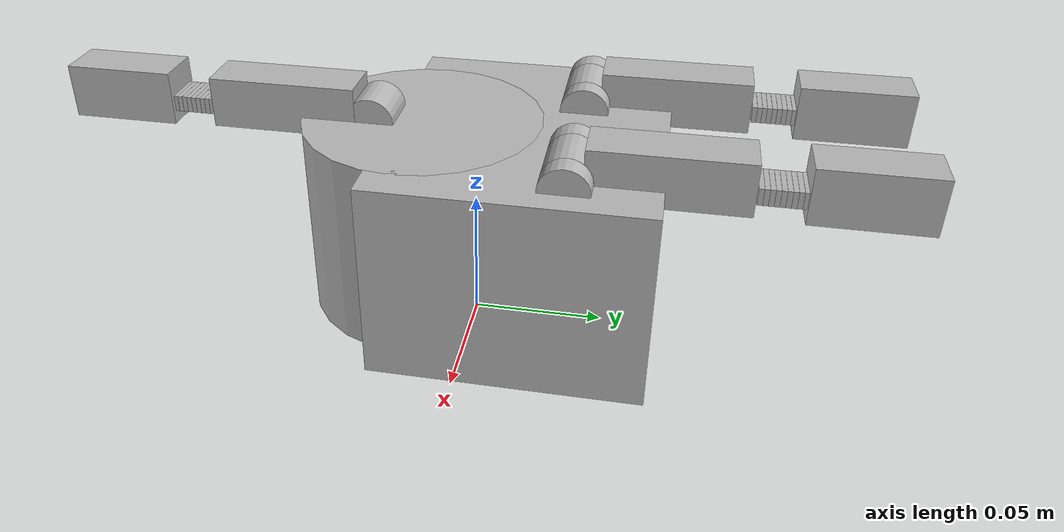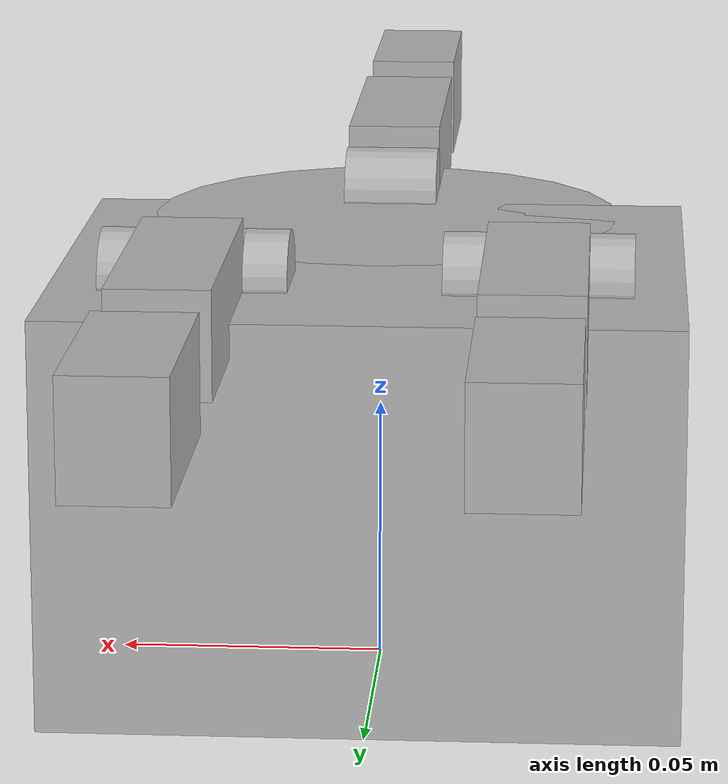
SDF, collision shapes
<sdf version="1.3">
 <model name="irobot_hand">
  <static>false</static>
  <link name="base_link">
   <inertial>
    <mass>0.1</mass>
    <inertia>
     <ixx>0.001000</ixx>
     <ixy>0</ixy>
     <ixz>0</ixz>
     <iyy>0.001000</iyy>
     <iyz>0</iyz>
     <izz>0.001000</izz>
    </inertia>
   </inertial>
   <collision name="collision1">
    <pose>0 0.02 0.045 0 0 0</pose>
    <geometry><box><size>0.114 0.1 0.075</size></box></geometry>
   </collision>
   <collision name="collision2">
    <pose>0 -0.02 0.045 0 0 0</pose>
    <geometry><cylinder><radius>0.0448</radius><length>0.075</length></cylinder></geometry>
   </collision>
   <visual name="base_link_vis">
    <pose>0 -0.038000 -0.023000 0 0 0</pose>
    <geometry><mesh><uri>model://../model_source/models/irobot_hand/meshes/palm.stl</uri></mesh></geometry>
   </visual>
  </link>
  <link name="finger0/base_rotation_link">
   <pose>0.030750 0.038000 0.069477 0 0 0</pose>
   <inertial>
    <mass>0.1</mass>
    <inertia>
     <ixx>0.001000</ixx>
     <ixy>0</ixy>
     <ixz>0</ixz>
     <iyy>0.001000</iyy>
     <iyz>0</iyz>
     <izz>0.001000</izz>
    </inertia>
   </inertial>
   <collision name="collision_1">
    <pose>0 0 -.0025 0 0 0</pose>
    <geometry><cylinder><length>0.0145</length><radius>0.025</radius></cylinder></geometry>
   </collision>
   <collision name="collision_2">
    <pose>0 0 -.0104 0 0 0</pose>
    <geometry><cylinder><length>0.0145</length><radius>0.0165</radius></cylinder></geometry>
   </collision>
   <collision name="collision_3">
    <pose>0 0 .0135 1.5707 0 1.5707</pose>
    <geometry><cylinder><length>0.02</length><radius>0.002</radius></cylinder></geometry>
   </collision>
   <collision name="collision_4">
    <pose>0.013 0 .0135 1.5707 0 1.5707</pose>
    <geometry><cylinder><length>0.008</length><radius>0.009</radius></cylinder></geometry>
   </collision>
   <collision name="collision_5">
    <pose>-0.013 0 .0135 1.5707 0 1.5707</pose>
    <geometry><cylinder><length>0.008</length><radius>0.009</radius></cylinder></geometry>
   </collision>
   <visual name="finger0/base_rotation_link_vis">
    <pose>0 0 0 1.57 0 0</pose>
    <geometry><mesh><uri>model://../model_source/models/irobot_hand/meshes/finger_base.stl</uri></mesh></geometry>
   </visual>
  </link>
  <link name="finger0/proximal_link">
   <pose>0.030750 0.038000 0.082977 1.57 0 -3.140000</pose>
   <inertial>
    <mass>0.1</mass>
    <inertia>
     <ixx>0.001000</ixx>
     <ixy>0</ixy>
     <ixz>0</ixz>
     <iyy>0.001000</iyy>
     <iyz>0</iyz>
     <izz>0.001000</izz>
    </inertia>
   </inertial>
   <collision name="collision1">
    <pose>0 0.0028 0.033 0 0 0</pose>
    <geometry><box><size>0.018 0.019 0.055</size></box></geometry>
   </collision>
   <collision name="collision2">
    <pose>0 0 0 0 1.5707 0</pose>
    <geometry><cylinder><radius>0.009</radius><length>0.018</length></cylinder></geometry>
   </collision>
   <visual name="visual">
    <pose>0 0 0 1.57 -1.57 0</pose>
    <geometry>
     <mesh><uri>model://../model_source/models/irobot_hand/meshes/finger_proximal.stl</uri></mesh>
    </geometry>
   </visual>
  </link>
  <link name="finger0/flexible_link_hidden_between_proximal_link_and_1">
   <pose>0.030651 0.1 0.083026 1.57 0 -3.140000</pose>
   <inertial>
    <mass>0.1</mass>
    <inertia>
     <ixx>0.001000</ixx>
     <ixy>0</ixy>
     <ixz>0</ixz>
     <iyy>0.001000</iyy>
     <iyz>0</iyz>
     <izz>0.001000</izz>
    </inertia>
   </inertial>
  </link>
  <link name="finger0/flexible_link_1">
   <pose>0.030651 0.1 0.083026 1.57 0 -3.140000</pose>
   <inertial>
    <mass>0.1</mass>
    <inertia>
     <ixx>0.001000</ixx>
     <ixy>0</ixy>
     <ixz>0</ixz>
     <iyy>0.001000</iyy>
     <iyz>0</iyz>
     <izz>0.001000</izz>
    </inertia>
   </inertial>
   <collision name="collision">
    <pose>0 0 0 1.57 0 0</pose>
    <geometry><box><size>0.014000 0.001760 0.006000</size></box></geometry>
   </collision>
   <visual name="visual">
    <pose>0 0 0 1.57 0 0</pose>
    <geometry><box><size>0.014000 0.001760 0.006000</size></box></geometry>
   </visual>
  </link>
  <link name="finger0/flexible_link_hidden_between_1_and_2">
   <pose>0.030648 0.101778 0.083028 1.57 0 -3.140000</pose>
   <inertial>
    <mass>0.1</mass>
    <inertia>
     <ixx>0.001000</ixx>
     <ixy>0</ixy>
     <ixz>0</ixz>
     <iyy>0.001000</iyy>
     <iyz>0</iyz>
     <izz>0.001000</izz>
    </inertia>
   </inertial>
  </link>
  <link name="finger0/flexible_link_2">
   <pose>0.030648 0.101778 0.083028 1.57 0 -3.140000</pose>
   <inertial>
    <mass>0.1</mass>
    <inertia>
     <ixx>0.001000</ixx>
     <ixy>0</ixy>
     <ixz>0</ixz>
     <iyy>0.001000</iyy>
     <iyz>0</iyz>
     <izz>0.001000</izz>
    </inertia>
   </inertial>
   <collision name="collision">
    <pose>0 0 0 1.57 0 0</pose>
    <geometry><box><size>0.014000 0.001760 0.006000</size></box></geometry>
   </collision>
   <visual name="visual">
    <pose>0 0 0 1.57 0 0</pose>
    <geometry><box><size>0.014000 0.001760 0.006000</size></box></geometry>
   </visual>
  </link>
  <link name="finger0/flexible_link_hidden_between_2_and_3">
   <pose>0.030646 0.103555 0.083029 1.57 0 -3.140000</pose>
   <inertial>
    <mass>0.1</mass>
    <inertia>
     <ixx>0.001000</ixx>
     <ixy>0</ixy>
     <ixz>0</ixz>
     <iyy>0.001000</iyy>
     <iyz>0</iyz>
     <izz>0.001000</izz>
    </inertia>
   </inertial>
  </link>
  <link name="finger0/flexible_link_3">
   <pose>0.030646 0.103555 0.083029 1.57 0 -3.140000</pose>
   <inertial>
    <mass>0.1</mass>
    <inertia>
     <ixx>0.001000</ixx>
     <ixy>0</ixy>
     <ixz>0</ixz>
     <iyy>0.001000</iyy>
     <iyz>0</iyz>
     <izz>0.001000</izz>
    </inertia>
   </inertial>
   <collision name="collision">
    <pose>0 0 0 1.57 0 0</pose>
    <geometry><box><size>0.014000 0.001760 0.006000</size></box></geometry>
   </collision>
   <visual name="visual">
    <pose>0 0 0 1.57 0 0</pose>
    <geometry><box><size>0.014000 0.001760 0.006000</size></box></geometry>
   </visual>
  </link>
  <link name="finger0/flexible_link_hidden_between_3_and_4">
   <pose>0.030643 0.105333 0.083031 1.57 0 -3.140000</pose>
   <inertial>
    <mass>0.1</mass>
    <inertia>
     <ixx>0.001000</ixx>
     <ixy>0</ixy>
     <ixz>0</ixz>
     <iyy>0.001000</iyy>
     <iyz>0</iyz>
     <izz>0.001000</izz>
    </inertia>
   </inertial>
  </link>
  <link name="finger0/flexible_link_4">
   <pose>0.030643 0.105333 0.083031 1.57 0 -3.140000</pose>
   <inertial>
    <mass>0.1</mass>
    <inertia>
     <ixx>0.001000</ixx>
     <ixy>0</ixy>
     <ixz>0</ixz>
     <iyy>0.001000</iyy>
     <iyz>0</iyz>
     <izz>0.001000</izz>
    </inertia>
   </inertial>
   <collision name="collision">
    <pose>0 0 0 1.57 0 0</pose>
    <geometry><box><size>0.014000 0.001760 0.006000</size></box></geometry>
   </collision>
   <visual name="visual">
    <pose>0 0 0 1.57 0 0</pose>
    <geometry><box><size>0.014000 0.001760 0.006000</size></box></geometry>
   </visual>
  </link>
  <link name="finger0/flexible_link_hidden_between_4_and_5">
   <pose>0.030640 0.107111 0.083032 1.57 0 -3.140000</pose>
   <inertial>
    <mass>0.1</mass>
    <inertia>
     <ixx>0.001000</ixx>
     <ixy>0</ixy>
     <ixz>0</ixz>
     <iyy>0.001000</iyy>
     <iyz>0</iyz>
     <izz>0.001000</izz>
    </inertia>
   </inertial>
  </link>
  <link name="finger0/flexible_link_5">
   <pose>0.030640 0.107111 0.083032 1.57 0 -3.140000</pose>
   <inertial>
    <mass>0.1</mass>
    <inertia>
     <ixx>0.001000</ixx>
     <ixy>0</ixy>
     <ixz>0</ixz>
     <iyy>0.001000</iyy>
     <iyz>0</iyz>
     <izz>0.001000</izz>
    </inertia>
   </inertial>
   <collision name="collision">
    <pose>0 0 0 1.57 0 0</pose>
    <geometry><box><size>0.014000 0.001760 0.006000</size></box></geometry>
   </collision>
   <visual name="visual">
    <pose>0 0 0 1.57 0 0</pose>
    <geometry><box><size>0.014000 0.001760 0.006000</size></box></geometry>
   </visual>
  </link>
  <link name="finger0/flexible_link_hidden_between_5_and_6">
   <pose>0.030637 0.108889 0.083033 1.57 0 -3.140000</pose>
   <inertial>
    <mass>0.1</mass>
    <inertia>
     <ixx>0.001000</ixx>
     <ixy>0</ixy>
     <ixz>0</ixz>
     <iyy>0.001000</iyy>
     <iyz>0</iyz>
     <izz>0.001000</izz>
    </inertia>
   </inertial>
  </link>
  <link name="finger0/flexible_link_6">
   <pose>0.030637 0.108889 0.083033 1.57 0 -3.140000</pose>
   <inertial>
    <mass>0.1</mass>
    <inertia>
     <ixx>0.001000</ixx>
     <ixy>0</ixy>
     <ixz>0</ixz>
     <iyy>0.001000</iyy>
     <iyz>0</iyz>
     <izz>0.001000</izz>
    </inertia>
   </inertial>
   <collision name="collision">
    <pose>0 0 0 1.57 0 0</pose>
    <geometry><box><size>0.014000 0.001760 0.006000</size></box></geometry>
   </collision>
   <visual name="visual">
    <pose>0 0 0 1.57 0 0</pose>
    <geometry><box><size>0.014000 0.001760 0.006000</size></box></geometry>
   </visual>
  </link>
  <link name="finger0/flexible_link_hidden_between_6_and_7">
   <pose>0.030634 0.110667 0.083035 1.57 0 -3.140000</pose>
   <inertial>
    <mass>0.1</mass>
    <inertia>
     <ixx>0.001000</ixx>
     <ixy>0</ixy>
     <ixz>0</ixz>
     <iyy>0.001000</iyy>
     <iyz>0</iyz>
     <izz>0.001000</izz>
    </inertia>
   </inertial>
  </link>
  <link name="finger0/flexible_link_7">
   <pose>0.030634 0.110667 0.083035 1.57 0 -3.140000</pose>
   <inertial>
    <mass>0.1</mass>
    <inertia>
     <ixx>0.001000</ixx>
     <ixy>0</ixy>
     <ixz>0</ixz>
     <iyy>0.001000</iyy>
     <iyz>0</iyz>
     <izz>0.001000</izz>
    </inertia>
   </inertial>
   <collision name="collision">
    <pose>0 0 0 1.57 0 0</pose>
    <geometry><box><size>0.014000 0.001760 0.006000</size></box></geometry>
   </collision>
   <visual name="visual">
    <pose>0 0 0 1.57 0 0</pose>
    <geometry><box><size>0.014000 0.001760 0.006000</size></box></geometry>
   </visual>
  </link>
  <link name="finger0/flexible_link_hidden_between_7_and_8">
   <pose>0.030631 0.112444 0.083036 1.57 0 -3.140000</pose>
   <inertial>
    <mass>0.1</mass>
    <inertia>
     <ixx>0.001000</ixx>
     <ixy>0</ixy>
     <ixz>0</ixz>
     <iyy>0.001000</iyy>
     <iyz>0</iyz>
     <izz>0.001000</izz>
    </inertia>
   </inertial>
  </link>
  <link name="finger0/flexible_link_8">
   <pose>0.030631 0.112444 0.083036 1.57 0 -3.140000</pose>
   <inertial>
    <mass>0.1</mass>
    <inertia>
     <ixx>0.001000</ixx>
     <ixy>0</ixy>
     <ixz>0</ixz>
     <iyy>0.001000</iyy>
     <iyz>0</iyz>
     <izz>0.001000</izz>
    </inertia>
   </inertial>
   <collision name="collision">
    <pose>0 0 0 1.57 0 0</pose>
    <geometry><box><size>0.014000 0.001760 0.006000</size></box></geometry>
   </collision>
   <visual name="visual">
    <pose>0 0 0 1.57 0 0</pose>
    <geometry><box><size>0.014000 0.001760 0.006000</size></box></geometry>
   </visual>
  </link>
  <link name="finger0/flexible_link_hidden_between_8_and_9">
   <pose>0.030629 0.114222 0.083038 1.57 0 -3.140000</pose>
   <inertial>
    <mass>0.1</mass>
    <inertia>
     <ixx>0.001000</ixx>
     <ixy>0</ixy>
     <ixz>0</ixz>
     <iyy>0.001000</iyy>
     <iyz>0</iyz>
     <izz>0.001000</izz>
    </inertia>
   </inertial>
  </link>
  <link name="finger0/flexible_link_9">
   <pose>0.030629 0.114222 0.083038 1.57 0 -3.140000</pose>
   <inertial>
    <mass>0.1</mass>
    <inertia>
     <ixx>0.001000</ixx>
     <ixy>0</ixy>
     <ixz>0</ixz>
     <iyy>0.001000</iyy>
     <iyz>0</iyz>
     <izz>0.001000</izz>
    </inertia>
   </inertial>
   <collision name="collision">
    <pose>0 0 0 1.57 0 0</pose>
    <geometry><box><size>0.014000 0.001760 0.006000</size></box></geometry>
   </collision>
   <visual name="visual">
    <pose>0 0 0 1.57 0 0</pose>
    <geometry><box><size>0.014000 0.001760 0.006000</size></box></geometry>
   </visual>
  </link>
  <link name="finger0/flexible_link_hidden_between_9_and_distal_link">
   <pose>0.030626 0.116000 0.083039 1.57 0 -3.140000</pose>
   <inertial>
    <mass>0.1</mass>
    <inertia>
     <ixx>0.001000</ixx>
     <ixy>0</ixy>
     <ixz>0</ixz>
     <iyy>0.001000</iyy>
     <iyz>0</iyz>
     <izz>0.001000</izz>
    </inertia>
   </inertial>
  </link>
  <link name="finger0/distal_link">
   <pose>0.030626 0.116000 0.083039 1.57 0 -3.140000</pose>
   <inertial>
    <mass>0.1</mass>
    <inertia>
     <ixx>0.001000</ixx>
     <ixy>0</ixy>
     <ixz>0</ixz>
     <iyy>0.001000</iyy>
     <iyz>0</iyz>
     <izz>0.001000</izz>
    </inertia>
   </inertial>
   <collision name="collision">
    <pose>0 0.0025 0.019 3.141590 0.001593 3.141590</pose>
    <geometry><box><size>0.0175 0.02023 0.04043</size></box></geometry>
   </collision>
   <visual name="visual">
    <pose>0 0 0 3.141590 0.001593 3.141590</pose>
    <geometry>
     <mesh><uri>model://../model_source/models/irobot_hand/meshes/finger_distal.stl</uri></mesh>
    </geometry>
   </visual>
  </link>
  <link name="finger1/base_rotation_link">
   <pose>-0.030750 0.038000 0.069477 0 0 0</pose>
   <inertial>
    <mass>0.1</mass>
    <inertia>
     <ixx>0.001000</ixx>
     <ixy>0</ixy>
     <ixz>0</ixz>
     <iyy>0.001000</iyy>
     <iyz>0</iyz>
     <izz>0.001000</izz>
    </inertia>
   </inertial>
   <collision name="collision_1">
    <pose>0 0 -.0025 0 0 0</pose>
    <geometry><cylinder><length>0.0145</length><radius>0.025</radius></cylinder></geometry>
   </collision>
   <collision name="collision_2">
    <pose>0 0 -.0104 0 0 0</pose>
    <geometry><cylinder><length>0.0145</length><radius>0.0165</radius></cylinder></geometry>
   </collision>
   <collision name="collision_3">
    <pose>0 0 .0135 1.5707 0 1.5707</pose>
    <geometry><cylinder><length>0.02</length><radius>0.002</radius></cylinder></geometry>
   </collision>
   <collision name="collision_4">
    <pose>0.013 0 .0135 1.5707 0 1.5707</pose>
    <geometry><cylinder><length>0.008</length><radius>0.009</radius></cylinder></geometry>
   </collision>
   <collision name="collision_5">
    <pose>-0.013 0 .0135 1.5707 0 1.5707</pose>
    <geometry><cylinder><length>0.008</length><radius>0.009</radius></cylinder></geometry>
   </collision>
   <visual name="visual">
    <pose>0 0 0 1.57 0 0</pose>
    <geometry><mesh><uri>model://../model_source/models/irobot_hand/meshes/finger_base.stl</uri></mesh></geometry>
   </visual>
  </link>
  <link name="finger1/proximal_link">
   <pose>-0.030750 0.038000 0.082977 1.57 0 -3.140000</pose>
   <inertial>
    <mass>0.1</mass>
    <inertia>
     <ixx>0.001000</ixx>
     <ixy>0</ixy>
     <ixz>0</ixz>
     <iyy>0.001000</iyy>
     <iyz>0</iyz>
     <izz>0.001000</izz>
    </inertia>
   </inertial>
   <collision name="collision1">
    <pose>0 0.0028 0.033 0 0 0</pose>
    <geometry><box><size>0.018 0.019 0.055</size></box></geometry>
   </collision>
   <collision name="collision2">
    <pose>0 0 0 0 1.5707 0</pose>
    <geometry><cylinder><radius>0.009</radius><length>0.018</length></cylinder></geometry>
   </collision>
   <visual name="visual">
    <pose>0 0 0 1.57 -1.57 -0</pose>
    <geometry>
     <mesh><uri>model://../model_source/models/irobot_hand/meshes/finger_proximal.stl</uri></mesh>
    </geometry>
   </visual>
  </link>
  <link name="finger1/flexible_link_hidden_between_proximal_link_and_1">
   <pose>-0.030849 0.1 0.083026 1.57 0 -3.140000</pose>
   <inertial>
    <mass>0.1</mass>
    <inertia>
     <ixx>0.001000</ixx>
     <ixy>0</ixy>
     <ixz>0</ixz>
     <iyy>0.001000</iyy>
     <iyz>0</iyz>
     <izz>0.001000</izz>
    </inertia>
   </inertial>
  </link>
  <link name="finger1/flexible_link_1">
   <pose>-0.030849 0.1 0.083026 1.57 0 -3.140000</pose>
   <inertial>
    <mass>0.1</mass>
    <inertia>
     <ixx>0.001000</ixx>
     <ixy>0</ixy>
     <ixz>0</ixz>
     <iyy>0.001000</iyy>
     <iyz>0</iyz>
     <izz>0.001000</izz>
    </inertia>
   </inertial>
   <collision name="collision">
    <pose>0 0 0 1.57 0 0</pose>
    <geometry><box><size>0.014000 0.001760 0.006000</size></box></geometry>
   </collision>
   <visual name="visual">
    <pose>0 0 0 1.57 0 0</pose>
    <geometry><box><size>0.014000 0.001760 0.006000</size></box></geometry>
   </visual>
  </link>
  <link name="finger1/flexible_link_hidden_between_1_and_2">
   <pose>-0.030852 0.101778 0.083028 1.57 0 -3.140000</pose>
   <inertial>
    <mass>0.1</mass>
    <inertia>
     <ixx>0.001000</ixx>
     <ixy>0</ixy>
     <ixz>0</ixz>
     <iyy>0.001000</iyy>
     <iyz>0</iyz>
     <izz>0.001000</izz>
    </inertia>
   </inertial>
  </link>
  <link name="finger1/flexible_link_2">
   <pose>-0.030852 0.101778 0.083028 1.57 0 -3.140000</pose>
   <inertial>
    <mass>0.1</mass>
    <inertia>
     <ixx>0.001000</ixx>
     <ixy>0</ixy>
     <ixz>0</ixz>
     <iyy>0.001000</iyy>
     <iyz>0</iyz>
     <izz>0.001000</izz>
    </inertia>
   </inertial>
   <collision name="collision">
    <pose>0 0 0 1.57 0 0</pose>
    <geometry><box><size>0.014000 0.001760 0.006000</size></box></geometry>
   </collision>
   <visual name="visual">
    <pose>0 0 0 1.57 0 0</pose>
    <geometry><box><size>0.014000 0.001760 0.006000</size></box></geometry>
   </visual>
  </link>
  <link name="finger1/flexible_link_hidden_between_2_and_3">
   <pose>-0.030854 0.103555 0.083029 1.57 0 -3.140000</pose>
   <inertial>
    <mass>0.1</mass>
    <inertia>
     <ixx>0.001000</ixx>
     <ixy>0</ixy>
     <ixz>0</ixz>
     <iyy>0.001000</iyy>
     <iyz>0</iyz>
     <izz>0.001000</izz>
    </inertia>
   </inertial>
  </link>
  <link name="finger1/flexible_link_3">
   <pose>-0.030854 0.103555 0.083029 1.57 0 -3.140000</pose>
   <inertial>
    <mass>0.1</mass>
    <inertia>
     <ixx>0.001000</ixx>
     <ixy>0</ixy>
     <ixz>0</ixz>
     <iyy>0.001000</iyy>
     <iyz>0</iyz>
     <izz>0.001000</izz>
    </inertia>
   </inertial>
   <collision name="collision">
    <pose>0 0 0 1.57 0 0</pose>
    <geometry><box><size>0.014000 0.001760 0.006000</size></box></geometry>
   </collision>
   <visual name="visual">
    <pose>0 0 0 1.57 0 0</pose>
    <geometry><box><size>0.014000 0.001760 0.006000</size></box></geometry>
   </visual>
  </link>
  <link name="finger1/flexible_link_hidden_between_3_and_4">
   <pose>-0.030857 0.105333 0.083031 1.57 0 -3.140000</pose>
   <inertial>
    <mass>0.1</mass>
    <inertia>
     <ixx>0.001000</ixx>
     <ixy>0</ixy>
     <ixz>0</ixz>
     <iyy>0.001000</iyy>
     <iyz>0</iyz>
     <izz>0.001000</izz>
    </inertia>
   </inertial>
  </link>
  <link name="finger1/flexible_link_4">
   <pose>-0.030857 0.105333 0.083031 1.57 0 -3.140000</pose>
   <inertial>
    <mass>0.1</mass>
    <inertia>
     <ixx>0.001000</ixx>
     <ixy>0</ixy>
     <ixz>0</ixz>
     <iyy>0.001000</iyy>
     <iyz>0</iyz>
     <izz>0.001000</izz>
    </inertia>
   </inertial>
   <collision name="collision">
    <pose>0 0 0 1.57 0 0</pose>
    <geometry><box><size>0.014000 0.001760 0.006000</size></box></geometry>
   </collision>
   <visual name="visual">
    <pose>0 0 0 1.57 0 0</pose>
    <geometry><box><size>0.014000 0.001760 0.006000</size></box></geometry>
   </visual>
  </link>
  <link name="finger1/flexible_link_hidden_between_4_and_5">
   <pose>-0.030860 0.107111 0.083032 1.57 0 -3.140000</pose>
   <inertial>
    <mass>0.1</mass>
    <inertia>
     <ixx>0.001000</ixx>
     <ixy>0</ixy>
     <ixz>0</ixz>
     <iyy>0.001000</iyy>
     <iyz>0</iyz>
     <izz>0.001000</izz>
    </inertia>
   </inertial>
  </link>
  <link name="finger1/flexible_link_5">
   <pose>-0.030860 0.107111 0.083032 1.57 0 -3.140000</pose>
   <inertial>
    <mass>0.1</mass>
    <inertia>
     <ixx>0.001000</ixx>
     <ixy>0</ixy>
     <ixz>0</ixz>
     <iyy>0.001000</iyy>
     <iyz>0</iyz>
     <izz>0.001000</izz>
    </inertia>
   </inertial>
   <collision name="collision">
    <pose>0 0 0 1.57 0 0</pose>
    <geometry><box><size>0.014000 0.001760 0.006000</size></box></geometry>
   </collision>
   <visual name="visual">
    <pose>0 0 0 1.57 0 0</pose>
    <geometry><box><size>0.014000 0.001760 0.006000</size></box></geometry>
   </visual>
  </link>
  <link name="finger1/flexible_link_hidden_between_5_and_6">
   <pose>-0.030863 0.108889 0.083033 1.57 0 -3.140000</pose>
   <inertial>
    <mass>0.1</mass>
    <inertia>
     <ixx>0.001000</ixx>
     <ixy>0</ixy>
     <ixz>0</ixz>
     <iyy>0.001000</iyy>
     <iyz>0</iyz>
     <izz>0.001000</izz>
    </inertia>
   </inertial>
  </link>
  <link name="finger1/flexible_link_6">
   <pose>-0.030863 0.108889 0.083033 1.57 0 -3.140000</pose>
   <inertial>
    <mass>0.1</mass>
    <inertia>
     <ixx>0.001000</ixx>
     <ixy>0</ixy>
     <ixz>0</ixz>
     <iyy>0.001000</iyy>
     <iyz>0</iyz>
     <izz>0.001000</izz>
    </inertia>
   </inertial>
   <collision name="collision">
    <pose>0 0 0 1.57 0 0</pose>
    <geometry><box><size>0.014000 0.001760 0.006000</size></box></geometry>
   </collision>
   <visual name="visual">
    <pose>0 0 0 1.57 0 0</pose>
    <geometry><box><size>0.014000 0.001760 0.006000</size></box></geometry>
   </visual>
  </link>
  <link name="finger1/flexible_link_hidden_between_6_and_7">
   <pose>-0.030866 0.110667 0.083035 1.57 0 -3.140000</pose>
   <inertial>
    <mass>0.1</mass>
    <inertia>
     <ixx>0.001000</ixx>
     <ixy>0</ixy>
     <ixz>0</ixz>
     <iyy>0.001000</iyy>
     <iyz>0</iyz>
     <izz>0.001000</izz>
    </inertia>
   </inertial>
  </link>
  <link name="finger1/flexible_link_7">
   <pose>-0.030866 0.110667 0.083035 1.57 0 -3.140000</pose>
   <inertial>
    <mass>0.1</mass>
    <inertia>
     <ixx>0.001000</ixx>
     <ixy>0</ixy>
     <ixz>0</ixz>
     <iyy>0.001000</iyy>
     <iyz>0</iyz>
     <izz>0.001000</izz>
    </inertia>
   </inertial>
   <collision name="collision">
    <pose>0 0 0 1.57 0 0</pose>
    <geometry><box><size>0.014000 0.001760 0.006000</size></box></geometry>
   </collision>
   <visual name="visual">
    <pose>0 0 0 1.57 0 0</pose>
    <geometry><box><size>0.014000 0.001760 0.006000</size></box></geometry>
   </visual>
  </link>
  <link name="finger1/flexible_link_hidden_between_7_and_8">
   <pose>-0.030869 0.112444 0.083036 1.57 0 -3.140000</pose>
   <inertial>
    <mass>0.1</mass>
    <inertia>
     <ixx>0.001000</ixx>
     <ixy>0</ixy>
     <ixz>0</ixz>
     <iyy>0.001000</iyy>
     <iyz>0</iyz>
     <izz>0.001000</izz>
    </inertia>
   </inertial>
  </link>
  <link name="finger1/flexible_link_8">
   <pose>-0.030869 0.112444 0.083036 1.57 0 -3.140000</pose>
   <inertial>
    <mass>0.1</mass>
    <inertia>
     <ixx>0.001000</ixx>
     <ixy>0</ixy>
     <ixz>0</ixz>
     <iyy>0.001000</iyy>
     <iyz>0</iyz>
     <izz>0.001000</izz>
    </inertia>
   </inertial>
   <collision name="collision">
    <pose>0 0 0 1.57 0 0</pose>
    <geometry><box><size>0.014000 0.001760 0.006000</size></box></geometry>
   </collision>
   <visual name="visual">
    <pose>0 0 0 1.57 0 0</pose>
    <geometry><box><size>0.014000 0.001760 0.006000</size></box></geometry>
   </visual>
  </link>
  <link name="finger1/flexible_link_hidden_between_8_and_9">
   <pose>-0.030871 0.114222 0.083038 1.57 0 -3.140000</pose>
   <inertial>
    <mass>0.1</mass>
    <inertia>
     <ixx>0.001000</ixx>
     <ixy>0</ixy>
     <ixz>0</ixz>
     <iyy>0.001000</iyy>
     <iyz>0</iyz>
     <izz>0.001000</izz>
    </inertia>
   </inertial>
  </link>
  <link name="finger1/flexible_link_9">
   <pose>-0.030871 0.114222 0.083038 1.57 0 -3.140000</pose>
   <inertial>
    <mass>0.1</mass>
    <inertia>
     <ixx>0.001000</ixx>
     <ixy>0</ixy>
     <ixz>0</ixz>
     <iyy>0.001000</iyy>
     <iyz>0</iyz>
     <izz>0.001000</izz>
    </inertia>
   </inertial>
   <collision name="collision">
    <pose>0 0 0 1.57 0 0</pose>
    <geometry><box><size>0.014000 0.001760 0.006000</size></box></geometry>
   </collision>
   <visual name="visual">
    <pose>0 0 0 1.57 0 0</pose>
    <geometry><box><size>0.014000 0.001760 0.006000</size></box></geometry>
   </visual>
  </link>
  <link name="finger1/flexible_link_hidden_between_9_and_distal_link">
   <pose>-0.030874 0.116000 0.083039 1.57 0 -3.140000</pose>
   <inertial>
    <mass>0.1</mass>
    <inertia>
     <ixx>0.001000</ixx>
     <ixy>0</ixy>
     <ixz>0</ixz>
     <iyy>0.001000</iyy>
     <iyz>0</iyz>
     <izz>0.001000</izz>
    </inertia>
   </inertial>
  </link>
  <link name="finger1/distal_link">
   <pose>-0.030874 0.116000 0.083039 1.57 0 -3.140000</pose>
   <inertial>
    <mass>0.1</mass>
    <inertia>
     <ixx>0.001000</ixx>
     <ixy>0</ixy>
     <ixz>0</ixz>
     <iyy>0.001000</iyy>
     <iyz>0</iyz>
     <izz>0.001000</izz>
    </inertia>
   </inertial>
   <collision name="collision">
    <pose>0 0.0025 0.019 3.141590 0.001593 3.141590</pose>
    <geometry><box><size>0.0175 0.02023 0.04043</size></box></geometry>
   </collision>
   <visual name="visual">
    <pose>0 0 0 3.141590 0.001593 3.141590</pose>
    <geometry>
     <mesh><uri>model://../model_source/models/irobot_hand/meshes/finger_distal.stl</uri></mesh>
    </geometry>
   </visual>
  </link>
  <link name="finger2/proximal_link">
   <pose>0 -0.038000 0.082755 1.57 0 0</pose>
   <inertial>
    <mass>0.1</mass>
    <inertia>
     <ixx>0.001000</ixx>
     <ixy>0</ixy>
     <ixz>0</ixz>
     <iyy>0.001000</iyy>
     <iyz>0</iyz>
     <izz>0.001000</izz>
    </inertia>
   </inertial>
   <collision name="collision1">
    <pose>0 0.0028 0.033 0 0 0</pose>
    <geometry><box><size>0.018 0.019 0.055</size></box></geometry>
   </collision>
   <collision name="collision2">
    <pose>0 0 0 0 1.5707 0</pose>
    <geometry><cylinder><radius>0.009</radius><length>0.018</length></cylinder></geometry>
   </collision>
   <visual name="visual">
    <pose>0 0 0 1.57 -1.57 -0</pose>
    <geometry>
     <mesh><uri>model://../model_source/models/irobot_hand/meshes/finger_proximal.stl</uri></mesh>
    </geometry>
   </visual>
  </link>
  <link name="finger2/flexible_link_hidden_between_proximal_link_and_1">
   <pose>0 -0.1 0.082804 1.57 0 0</pose>
   <inertial>
    <mass>0.1</mass>
    <inertia>
     <ixx>0.001000</ixx>
     <ixy>0</ixy>
     <ixz>0</ixz>
     <iyy>0.001000</iyy>
     <iyz>0</iyz>
     <izz>0.001000</izz>
    </inertia>
   </inertial>
  </link>
  <link name="finger2/flexible_link_1">
   <pose>0 -0.1 0.082804 1.57 0 0</pose>
   <inertial>
    <mass>0.1</mass>
    <inertia>
     <ixx>0.001000</ixx>
     <ixy>0</ixy>
     <ixz>0</ixz>
     <iyy>0.001000</iyy>
     <iyz>0</iyz>
     <izz>0.001000</izz>
    </inertia>
   </inertial>
   <collision name="collision">
    <pose>0 0 0 1.57 0 0</pose>
    <geometry><box><size>0.014000 0.001760 0.006000</size></box></geometry>
   </collision>
   <visual name="visual">
    <pose>0 0 0 1.57 0 0</pose>
    <geometry><box><size>0.014000 0.001760 0.006000</size></box></geometry>
   </visual>
  </link>
  <link name="finger2/flexible_link_hidden_between_1_and_2">
   <pose>0 -0.101778 0.082806 1.57 0 0</pose>
   <inertial>
    <mass>0.1</mass>
    <inertia>
     <ixx>0.001000</ixx>
     <ixy>0</ixy>
     <ixz>0</ixz>
     <iyy>0.001000</iyy>
     <iyz>0</iyz>
     <izz>0.001000</izz>
    </inertia>
   </inertial>
  </link>
  <link name="finger2/flexible_link_2">
   <pose>0 -0.101778 0.082806 1.57 0 0</pose>
   <inertial>
    <mass>0.1</mass>
    <inertia>
     <ixx>0.001000</ixx>
     <ixy>0</ixy>
     <ixz>0</ixz>
     <iyy>0.001000</iyy>
     <iyz>0</iyz>
     <izz>0.001000</izz>
    </inertia>
   </inertial>
   <collision name="collision">
    <pose>0 0 0 1.57 0 0</pose>
    <geometry><box><size>0.014000 0.001760 0.006000</size></box></geometry>
   </collision>
   <visual name="visual">
    <pose>0 0 0 1.57 0 0</pose>
    <geometry><box><size>0.014000 0.001760 0.006000</size></box></geometry>
   </visual>
  </link>
  <link name="finger2/flexible_link_hidden_between_2_and_3">
   <pose>0 -0.103556 0.082807 1.57 0 0</pose>
   <inertial>
    <mass>0.1</mass>
    <inertia>
     <ixx>0.001000</ixx>
     <ixy>0</ixy>
     <ixz>0</ixz>
     <iyy>0.001000</iyy>
     <iyz>0</iyz>
     <izz>0.001000</izz>
    </inertia>
   </inertial>
  </link>
  <link name="finger2/flexible_link_3">
   <pose>0 -0.103556 0.082807 1.57 0 0</pose>
   <inertial>
    <mass>0.1</mass>
    <inertia>
     <ixx>0.001000</ixx>
     <ixy>0</ixy>
     <ixz>0</ixz>
     <iyy>0.001000</iyy>
     <iyz>0</iyz>
     <izz>0.001000</izz>
    </inertia>
   </inertial>
   <collision name="collision">
    <pose>0 0 0 1.57 0 0</pose>
    <geometry><box><size>0.014000 0.001760 0.006000</size></box></geometry>
   </collision>
   <visual name="visual">
    <pose>0 0 0 1.57 0 0</pose>
    <geometry><box><size>0.014000 0.001760 0.006000</size></box></geometry>
   </visual>
  </link>
  <link name="finger2/flexible_link_hidden_between_3_and_4">
   <pose>0 -0.105333 0.082809 1.57 0 0</pose>
   <inertial>
    <mass>0.1</mass>
    <inertia>
     <ixx>0.001000</ixx>
     <ixy>0</ixy>
     <ixz>0</ixz>
     <iyy>0.001000</iyy>
     <iyz>0</iyz>
     <izz>0.001000</izz>
    </inertia>
   </inertial>
  </link>
  <link name="finger2/flexible_link_4">
   <pose>0 -0.105333 0.082809 1.57 0 0</pose>
   <inertial>
    <mass>0.1</mass>
    <inertia>
     <ixx>0.001000</ixx>
     <ixy>0</ixy>
     <ixz>0</ixz>
     <iyy>0.001000</iyy>
     <iyz>0</iyz>
     <izz>0.001000</izz>
    </inertia>
   </inertial>
   <collision name="collision">
    <pose>0 0 0 1.57 0 0</pose>
    <geometry><box><size>0.014000 0.001760 0.006000</size></box></geometry>
   </collision>
   <visual name="visual">
    <pose>0 0 0 1.57 0 0</pose>
    <geometry><box><size>0.014000 0.001760 0.006000</size></box></geometry>
   </visual>
  </link>
  <link name="finger2/flexible_link_hidden_between_4_and_5">
   <pose>0 -0.107111 0.082810 1.57 0 0</pose>
   <inertial>
    <mass>0.1</mass>
    <inertia>
     <ixx>0.001000</ixx>
     <ixy>0</ixy>
     <ixz>0</ixz>
     <iyy>0.001000</iyy>
     <iyz>0</iyz>
     <izz>0.001000</izz>
    </inertia>
   </inertial>
  </link>
  <link name="finger2/flexible_link_5">
   <pose>0 -0.107111 0.082810 1.57 0 0</pose>
   <inertial>
    <mass>0.1</mass>
    <inertia>
     <ixx>0.001000</ixx>
     <ixy>0</ixy>
     <ixz>0</ixz>
     <iyy>0.001000</iyy>
     <iyz>0</iyz>
     <izz>0.001000</izz>
    </inertia>
   </inertial>
   <collision name="collision">
    <pose>0 0 0 1.57 0 0</pose>
    <geometry><box><size>0.014000 0.001760 0.006000</size></box></geometry>
   </collision>
   <visual name="visual">
    <pose>0 0 0 1.57 0 0</pose>
    <geometry><box><size>0.014000 0.001760 0.006000</size></box></geometry>
   </visual>
  </link>
  <link name="finger2/flexible_link_hidden_between_5_and_6">
   <pose>0 -0.108889 0.082811 1.57 0 0</pose>
   <inertial>
    <mass>0.1</mass>
    <inertia>
     <ixx>0.001000</ixx>
     <ixy>0</ixy>
     <ixz>0</ixz>
     <iyy>0.001000</iyy>
     <iyz>0</iyz>
     <izz>0.001000</izz>
    </inertia>
   </inertial>
  </link>
  <link name="finger2/flexible_link_6">
   <pose>0 -0.108889 0.082811 1.57 0 0</pose>
   <inertial>
    <mass>0.1</mass>
    <inertia>
     <ixx>0.001000</ixx>
     <ixy>0</ixy>
     <ixz>0</ixz>
     <iyy>0.001000</iyy>
     <iyz>0</iyz>
     <izz>0.001000</izz>
    </inertia>
   </inertial>
   <collision name="collision">
    <pose>0 0 0 1.57 0 0</pose>
    <geometry><box><size>0.014000 0.001760 0.006000</size></box></geometry>
   </collision>
   <visual name="visual">
    <pose>0 0 0 1.57 0 0</pose>
    <geometry><box><size>0.014000 0.001760 0.006000</size></box></geometry>
   </visual>
  </link>
  <link name="finger2/flexible_link_hidden_between_6_and_7">
   <pose>0 -0.110667 0.082813 1.57 0 0</pose>
   <inertial>
    <mass>0.1</mass>
    <inertia>
     <ixx>0.001000</ixx>
     <ixy>0</ixy>
     <ixz>0</ixz>
     <iyy>0.001000</iyy>
     <iyz>0</iyz>
     <izz>0.001000</izz>
    </inertia>
   </inertial>
  </link>
  <link name="finger2/flexible_link_7">
   <pose>0 -0.110667 0.082813 1.57 0 0</pose>
   <inertial>
    <mass>0.1</mass>
    <inertia>
     <ixx>0.001000</ixx>
     <ixy>0</ixy>
     <ixz>0</ixz>
     <iyy>0.001000</iyy>
     <iyz>0</iyz>
     <izz>0.001000</izz>
    </inertia>
   </inertial>
   <collision name="collision">
    <pose>0 0 0 1.57 0 0</pose>
    <geometry><box><size>0.014000 0.001760 0.006000</size></box></geometry>
   </collision>
   <visual name="visual">
    <pose>0 0 0 1.57 0 0</pose>
    <geometry><box><size>0.014000 0.001760 0.006000</size></box></geometry>
   </visual>
  </link>
  <link name="finger2/flexible_link_hidden_between_7_and_8">
   <pose>0 -0.112444 0.082814 1.57 0 0</pose>
   <inertial>
    <mass>0.1</mass>
    <inertia>
     <ixx>0.001000</ixx>
     <ixy>0</ixy>
     <ixz>0</ixz>
     <iyy>0.001000</iyy>
     <iyz>0</iyz>
     <izz>0.001000</izz>
    </inertia>
   </inertial>
  </link>
  <link name="finger2/flexible_link_8">
   <pose>0 -0.112444 0.082814 1.57 0 0</pose>
   <inertial>
    <mass>0.1</mass>
    <inertia>
     <ixx>0.001000</ixx>
     <ixy>0</ixy>
     <ixz>0</ixz>
     <iyy>0.001000</iyy>
     <iyz>0</iyz>
     <izz>0.001000</izz>
    </inertia>
   </inertial>
   <collision name="collision">
    <pose>0 0 0 1.57 0 0</pose>
    <geometry><box><size>0.014000 0.001760 0.006000</size></box></geometry>
   </collision>
   <visual name="visual">
    <pose>0 0 0 1.57 0 0</pose>
    <geometry><box><size>0.014000 0.001760 0.006000</size></box></geometry>
   </visual>
  </link>
  <link name="finger2/flexible_link_hidden_between_8_and_9">
   <pose>0 -0.114222 0.082816 1.57 0 0</pose>
   <inertial>
    <mass>0.1</mass>
    <inertia>
     <ixx>0.001000</ixx>
     <ixy>0</ixy>
     <ixz>0</ixz>
     <iyy>0.001000</iyy>
     <iyz>0</iyz>
     <izz>0.001000</izz>
    </inertia>
   </inertial>
  </link>
  <link name="finger2/flexible_link_9">
   <pose>0 -0.114222 0.082816 1.57 0 0</pose>
   <inertial>
    <mass>0.1</mass>
    <inertia>
     <ixx>0.001000</ixx>
     <ixy>0</ixy>
     <ixz>0</ixz>
     <iyy>0.001000</iyy>
     <iyz>0</iyz>
     <izz>0.001000</izz>
    </inertia>
   </inertial>
   <collision name="collision">
    <pose>0 0 0 1.57 0 0</pose>
    <geometry><box><size>0.014000 0.001760 0.006000</size></box></geometry>
   </collision>
   <visual name="visual">
    <pose>0 0 0 1.57 0 0</pose>
    <geometry><box><size>0.014000 0.001760 0.006000</size></box></geometry>
   </visual>
  </link>
  <link name="finger2/flexible_link_hidden_between_9_and_distal_link">
   <pose>0 -0.116000 0.082817 1.57 0 0</pose>
   <inertial>
    <mass>0.1</mass>
    <inertia>
     <ixx>0.001000</ixx>
     <ixy>0</ixy>
     <ixz>0</ixz>
     <iyy>0.001000</iyy>
     <iyz>0</iyz>
     <izz>0.001000</izz>
    </inertia>
   </inertial>
  </link>
  <link name="finger2/distal_link">
   <pose>0 -0.116000 0.082817 1.57 0 0</pose>
   <inertial>
    <mass>0.1</mass>
    <inertia>
     <ixx>0.001000</ixx>
     <ixy>0</ixy>
     <ixz>0</ixz>
     <iyy>0.001000</iyy>
     <iyz>0</iyz>
     <izz>0.001000</izz>
    </inertia>
   </inertial>
   <collision name="collision">
    <pose>0 0.0025 0.019 3.141590 0.001593 3.141590</pose>
    <geometry><box><size>0.0175 0.02023 0.04043</size></box></geometry>
   </collision>
   <visual name="visual">
    <pose>0 0 0 3.141590 0.001593 3.141590</pose>
    <geometry>
     <mesh><uri>model://../model_source/models/irobot_hand/meshes/finger_distal.stl</uri></mesh>
    </geometry>
   </visual>
  </link>
  <joint name="finger0/joint_base_rotation" type="revolute">
   <child>finger0/base_rotation_link</child>
   <parent>base_link</parent>
   <axis><xyz>0 0 -1</xyz><limit><lower>0</lower><upper>1.57</upper></limit></axis>
  </joint>
  <joint name="finger0/joint_base" type="revolute">
   <child>finger0/proximal_link</child>
   <parent>finger0/base_rotation_link</parent>
   <axis><xyz>0.999999 0.001593 -0</xyz><limit><lower>0</lower><upper>1.57</upper></limit></axis>
  </joint>
  <joint name="finger0/flexible_joint_flex_from_proximal_to_1" type="revolute">
   <child>finger0/flexible_link_hidden_between_proximal_link_and_1</child>
   <parent>finger0/proximal_link</parent>
   <axis><xyz>0.999999 0.001593 -0</xyz><limit><lower>0</lower><upper>1.57</upper></limit></axis>
  </joint>
  <joint name="finger0/flexible_joint_twist_from_proximal_to_1" type="revolute">
   <child>finger0/flexible_link_1</child>
   <parent>finger0/flexible_link_hidden_between_proximal_link_and_1</parent>
   <axis><xyz>-0.001593 0.999998 0.000796</xyz><limit><lower>0</lower><upper>1.57</upper></limit></axis>
  </joint>
  <joint name="finger0/flexible_joint_flex_from_1_to_2" type="revolute">
   <child>finger0/flexible_link_hidden_between_1_and_2</child>
   <parent>finger0/flexible_link_1</parent>
   <axis><xyz>0.999999 0.001593 -0</xyz><limit><lower>0</lower><upper>1.57</upper></limit></axis>
  </joint>
  <joint name="finger0/flexible_joint_twist_from_1_to_2" type="revolute">
   <child>finger0/flexible_link_2</child>
   <parent>finger0/flexible_link_hidden_between_1_and_2</parent>
   <axis><xyz>-0.001593 0.999998 0.000796</xyz><limit><lower>0</lower><upper>1.57</upper></limit></axis>
  </joint>
  <joint name="finger0/flexible_joint_flex_from_2_to_3" type="revolute">
   <child>finger0/flexible_link_hidden_between_2_and_3</child>
   <parent>finger0/flexible_link_2</parent>
   <axis><xyz>0.999999 0.001593 -0</xyz><limit><lower>0</lower><upper>1.57</upper></limit></axis>
  </joint>
  <joint name="finger0/flexible_joint_twist_from_2_to_3" type="revolute">
   <child>finger0/flexible_link_3</child>
   <parent>finger0/flexible_link_hidden_between_2_and_3</parent>
   <axis><xyz>-0.001593 0.999998 0.000796</xyz><limit><lower>0</lower><upper>1.57</upper></limit></axis>
  </joint>
  <joint name="finger0/flexible_joint_flex_from_3_to_4" type="revolute">
   <child>finger0/flexible_link_hidden_between_3_and_4</child>
   <parent>finger0/flexible_link_3</parent>
   <axis><xyz>0.999999 0.001593 -0</xyz><limit><lower>0</lower><upper>1.57</upper></limit></axis>
  </joint>
  <joint name="finger0/flexible_joint_flex_from_4_to_5" type="revolute">
   <child>finger0/flexible_link_hidden_between_4_and_5</child>
   <parent>finger0/flexible_link_4</parent>
   <axis><xyz>0.999999 0.001593 -0</xyz><limit><lower>0</lower><upper>1.57</upper></limit></axis>
  </joint>
  <joint name="finger0/flexible_joint_twist_from_3_to_4" type="revolute">
   <child>finger0/flexible_link_4</child>
   <parent>finger0/flexible_link_hidden_between_3_and_4</parent>
   <axis><xyz>-0.001593 0.999998 0.000796</xyz><limit><lower>0</lower><upper>1.57</upper></limit></axis>
  </joint>
  <joint name="finger0/flexible_joint_twist_from_4_to_5" type="revolute">
   <child>finger0/flexible_link_5</child>
   <parent>finger0/flexible_link_hidden_between_4_and_5</parent>
   <axis><xyz>-0.001593 0.999998 0.000796</xyz><limit><lower>0</lower><upper>1.57</upper></limit></axis>
  </joint>
  <joint name="finger0/flexible_joint_flex_from_5_to_6" type="revolute">
   <child>finger0/flexible_link_hidden_between_5_and_6</child>
   <parent>finger0/flexible_link_5</parent>
   <axis><xyz>0.999999 0.001593 -0</xyz><limit><lower>0</lower><upper>1.57</upper></limit></axis>
  </joint>
  <joint name="finger0/flexible_joint_twist_from_5_to_6" type="revolute">
   <child>finger0/flexible_link_6</child>
   <parent>finger0/flexible_link_hidden_between_5_and_6</parent>
   <axis><xyz>-0.001593 0.999998 0.000796</xyz><limit><lower>0</lower><upper>1.57</upper></limit></axis>
  </joint>
  <joint name="finger0/flexible_joint_flex_from_6_to_7" type="revolute">
   <child>finger0/flexible_link_hidden_between_6_and_7</child>
   <parent>finger0/flexible_link_6</parent>
   <axis><xyz>0.999999 0.001593 -0</xyz><limit><lower>0</lower><upper>1.57</upper></limit></axis>
  </joint>
  <joint name="finger0/flexible_joint_twist_from_6_to_7" type="revolute">
   <child>finger0/flexible_link_7</child>
   <parent>finger0/flexible_link_hidden_between_6_and_7</parent>
   <axis><xyz>-0.001593 0.999998 0.000796</xyz><limit><lower>0</lower><upper>1.57</upper></limit></axis>
  </joint>
  <joint name="finger0/flexible_joint_flex_from_7_to_8" type="revolute">
   <child>finger0/flexible_link_hidden_between_7_and_8</child>
   <parent>finger0/flexible_link_7</parent>
   <axis><xyz>0.999999 0.001593 -0</xyz><limit><lower>0</lower><upper>1.57</upper></limit></axis>
  </joint>
  <joint name="finger0/flexible_joint_twist_from_7_to_8" type="revolute">
   <child>finger0/flexible_link_8</child>
   <parent>finger0/flexible_link_hidden_between_7_and_8</parent>
   <axis><xyz>-0.001593 0.999998 0.000796</xyz><limit><lower>0</lower><upper>1.57</upper></limit></axis>
  </joint>
  <joint name="finger0/flexible_joint_flex_from_8_to_9" type="revolute">
   <child>finger0/flexible_link_hidden_between_8_and_9</child>
   <parent>finger0/flexible_link_8</parent>
   <axis><xyz>0.999999 0.001593 -0</xyz><limit><lower>0</lower><upper>1.57</upper></limit></axis>
  </joint>
  <joint name="finger0/flexible_joint_flex_from_9_to_distal" type="revolute">
   <child>finger0/flexible_link_hidden_between_9_and_distal_link</child>
   <parent>finger0/flexible_link_9</parent>
   <axis><xyz>0.999999 0.001593 -0</xyz><limit><lower>0</lower><upper>1.57</upper></limit></axis>
  </joint>
  <joint name="finger0/flexible_joint_twist_from_8_to_9" type="revolute">
   <child>finger0/flexible_link_9</child>
   <parent>finger0/flexible_link_hidden_between_8_and_9</parent>
   <axis><xyz>-0.001593 0.999998 0.000796</xyz><limit><lower>0</lower><upper>1.57</upper></limit></axis>
  </joint>
  <joint name="finger0/flexible_joint_twist_from_9_to_distal" type="revolute">
   <child>finger0/distal_link</child>
   <parent>finger0/flexible_link_hidden_between_9_and_distal_link</parent>
   <axis><xyz>-0.001593 0.999998 0.000796</xyz><limit><lower>0</lower><upper>1.57</upper></limit></axis>
  </joint>
  <joint name="finger1/joint_base_rotation" type="revolute">
   <child>finger1/base_rotation_link</child>
   <parent>base_link</parent>
   <axis><xyz>0 0 1</xyz><limit><lower>0</lower><upper>1.57</upper></limit></axis>
  </joint>
  <joint name="finger1/joint_base" type="revolute">
   <child>finger1/proximal_link</child>
   <parent>finger1/base_rotation_link</parent>
   <axis><xyz>0.999999 0.001593 -0</xyz><limit><lower>0</lower><upper>1.57</upper></limit></axis>
  </joint>
  <joint name="finger1/flexible_joint_twist_from_proximal_to_1" type="revolute">
   <child>finger1/flexible_link_1</child>
   <parent>finger1/flexible_link_hidden_between_proximal_link_and_1</parent>
   <axis><xyz>-0.001593 0.999998 0.000796</xyz><limit><lower>0</lower><upper>1.57</upper></limit></axis>
  </joint>
  <joint name="finger1/flexible_joint_flex_from_proximal_to_1" type="revolute">
   <child>finger1/flexible_link_hidden_between_proximal_link_and_1</child>
   <parent>finger1/proximal_link</parent>
   <axis><xyz>0.999999 0.001593 -0</xyz><limit><lower>0</lower><upper>1.57</upper></limit></axis>
  </joint>
  <joint name="finger1/flexible_joint_flex_from_1_to_2" type="revolute">
   <child>finger1/flexible_link_hidden_between_1_and_2</child>
   <parent>finger1/flexible_link_1</parent>
   <axis><xyz>0.999999 0.001593 -0</xyz><limit><lower>0</lower><upper>1.57</upper></limit></axis>
  </joint>
  <joint name="finger1/flexible_joint_twist_from_1_to_2" type="revolute">
   <child>finger1/flexible_link_2</child>
   <parent>finger1/flexible_link_hidden_between_1_and_2</parent>
   <axis><xyz>-0.001593 0.999998 0.000796</xyz><limit><lower>0</lower><upper>1.57</upper></limit></axis>
  </joint>
  <joint name="finger1/flexible_joint_flex_from_2_to_3" type="revolute">
   <child>finger1/flexible_link_hidden_between_2_and_3</child>
   <parent>finger1/flexible_link_2</parent>
   <axis><xyz>0.999999 0.001593 -0</xyz><limit><lower>0</lower><upper>1.57</upper></limit></axis>
  </joint>
  <joint name="finger1/flexible_joint_twist_from_2_to_3" type="revolute">
   <child>finger1/flexible_link_3</child>
   <parent>finger1/flexible_link_hidden_between_2_and_3</parent>
   <axis><xyz>-0.001593 0.999998 0.000796</xyz><limit><lower>0</lower><upper>1.57</upper></limit></axis>
  </joint>
  <joint name="finger1/flexible_joint_flex_from_3_to_4" type="revolute">
   <child>finger1/flexible_link_hidden_between_3_and_4</child>
   <parent>finger1/flexible_link_3</parent>
   <axis><xyz>0.999999 0.001593 -0</xyz><limit><lower>0</lower><upper>1.57</upper></limit></axis>
  </joint>
  <joint name="finger1/flexible_joint_twist_from_3_to_4" type="revolute">
   <child>finger1/flexible_link_4</child>
   <parent>finger1/flexible_link_hidden_between_3_and_4</parent>
   <axis><xyz>-0.001593 0.999998 0.000796</xyz><limit><lower>0</lower><upper>1.57</upper></limit></axis>
  </joint>
  <joint name="finger1/flexible_joint_flex_from_4_to_5" type="revolute">
   <child>finger1/flexible_link_hidden_between_4_and_5</child>
   <parent>finger1/flexible_link_4</parent>
   <axis><xyz>0.999999 0.001593 -0</xyz><limit><lower>0</lower><upper>1.57</upper></limit></axis>
  </joint>
  <joint name="finger1/flexible_joint_twist_from_4_to_5" type="revolute">
   <child>finger1/flexible_link_5</child>
   <parent>finger1/flexible_link_hidden_between_4_and_5</parent>
   <axis><xyz>-0.001593 0.999998 0.000796</xyz><limit><lower>0</lower><upper>1.57</upper></limit></axis>
  </joint>
  <joint name="finger1/flexible_joint_flex_from_5_to_6" type="revolute">
   <child>finger1/flexible_link_hidden_between_5_and_6</child>
   <parent>finger1/flexible_link_5</parent>
   <axis><xyz>0.999999 0.001593 -0</xyz><limit><lower>0</lower><upper>1.57</upper></limit></axis>
  </joint>
  <joint name="finger1/flexible_joint_twist_from_5_to_6" type="revolute">
   <child>finger1/flexible_link_6</child>
   <parent>finger1/flexible_link_hidden_between_5_and_6</parent>
   <axis><xyz>-0.001593 0.999998 0.000796</xyz><limit><lower>0</lower><upper>1.57</upper></limit></axis>
  </joint>
  <joint name="finger1/flexible_joint_flex_from_6_to_7" type="revolute">
   <child>finger1/flexible_link_hidden_between_6_and_7</child>
   <parent>finger1/flexible_link_6</parent>
   <axis><xyz>0.999999 0.001593 -0</xyz><limit><lower>0</lower><upper>1.57</upper></limit></axis>
  </joint>
  <joint name="finger1/flexible_joint_twist_from_6_to_7" type="revolute">
   <child>finger1/flexible_link_7</child>
   <parent>finger1/flexible_link_hidden_between_6_and_7</parent>
   <axis><xyz>-0.001593 0.999998 0.000796</xyz><limit><lower>0</lower><upper>1.57</upper></limit></axis>
  </joint>
  <joint name="finger1/flexible_joint_flex_from_7_to_8" type="revolute">
   <child>finger1/flexible_link_hidden_between_7_and_8</child>
   <parent>finger1/flexible_link_7</parent>
   <axis><xyz>0.999999 0.001593 -0</xyz><limit><lower>0</lower><upper>1.57</upper></limit></axis>
  </joint>
  <joint name="finger1/flexible_joint_twist_from_7_to_8" type="revolute">
   <child>finger1/flexible_link_8</child>
   <parent>finger1/flexible_link_hidden_between_7_and_8</parent>
   <axis><xyz>-0.001593 0.999998 0.000796</xyz><limit><lower>0</lower><upper>1.57</upper></limit></axis>
  </joint>
  <joint name="finger1/flexible_joint_flex_from_8_to_9" type="revolute">
   <child>finger1/flexible_link_hidden_between_8_and_9</child>
   <parent>finger1/flexible_link_8</parent>
   <axis><xyz>0.999999 0.001593 -0</xyz><limit><lower>0</lower><upper>1.57</upper></limit></axis>
  </joint>
  <joint name="finger1/flexible_joint_twist_from_8_to_9" type="revolute">
   <child>finger1/flexible_link_9</child>
   <parent>finger1/flexible_link_hidden_between_8_and_9</parent>
   <axis><xyz>-0.001593 0.999998 0.000796</xyz><limit><lower>0</lower><upper>1.57</upper></limit></axis>
  </joint>
  <joint name="finger1/flexible_joint_flex_from_9_to_distal" type="revolute">
   <child>finger1/flexible_link_hidden_between_9_and_distal_link</child>
   <parent>finger1/flexible_link_9</parent>
   <axis><xyz>0.999999 0.001593 -0</xyz><limit><lower>0</lower><upper>1.57</upper></limit></axis>
  </joint>
  <joint name="finger1/flexible_joint_twist_from_9_to_distal" type="revolute">
   <child>finger1/distal_link</child>
   <parent>finger1/flexible_link_hidden_between_9_and_distal_link</parent>
   <axis><xyz>-0.001593 0.999998 0.000796</xyz><limit><lower>0</lower><upper>1.57</upper></limit></axis>
  </joint>
  <joint name="finger2/joint_base" type="revolute">
   <child>finger2/proximal_link</child>
   <parent>base_link</parent>
   <axis><xyz>-1 0 0</xyz><limit><lower>0</lower><upper>1.57</upper></limit></axis>
  </joint>
  <joint name="finger2/flexible_joint_flex_from_proximal_to_1" type="revolute">
   <child>finger2/flexible_link_hidden_between_proximal_link_and_1</child>
   <parent>finger2/proximal_link</parent>
   <axis><xyz>-1 0 0</xyz><limit><lower>0</lower><upper>1.57</upper></limit></axis>
  </joint>
  <joint name="finger2/flexible_joint_twist_from_proximal_to_1" type="revolute">
   <child>finger2/flexible_link_1</child>
   <parent>finger2/flexible_link_hidden_between_proximal_link_and_1</parent>
   <axis><xyz>0 -1 0.000796</xyz><limit><lower>0</lower><upper>1.57</upper></limit></axis>
  </joint>
  <joint name="finger2/flexible_joint_flex_from_1_to_2" type="revolute">
   <child>finger2/flexible_link_hidden_between_1_and_2</child>
   <parent>finger2/flexible_link_1</parent>
   <axis><xyz>-1 0 0</xyz><limit><lower>0</lower><upper>1.57</upper></limit></axis>
  </joint>
  <joint name="finger2/flexible_joint_twist_from_1_to_2" type="revolute">
   <child>finger2/flexible_link_2</child>
   <parent>finger2/flexible_link_hidden_between_1_and_2</parent>
   <axis><xyz>0 -1 0.000796</xyz><limit><lower>0</lower><upper>1.57</upper></limit></axis>
  </joint>
  <joint name="finger2/flexible_joint_flex_from_2_to_3" type="revolute">
   <child>finger2/flexible_link_hidden_between_2_and_3</child>
   <parent>finger2/flexible_link_2</parent>
   <axis><xyz>-1 0 0</xyz><limit><lower>0</lower><upper>1.57</upper></limit></axis>
  </joint>
  <joint name="finger2/flexible_joint_twist_from_2_to_3" type="revolute">
   <child>finger2/flexible_link_3</child>
   <parent>finger2/flexible_link_hidden_between_2_and_3</parent>
   <axis><xyz>0 -1 0.000796</xyz><limit><lower>0</lower><upper>1.57</upper></limit></axis>
  </joint>
  <joint name="finger2/flexible_joint_flex_from_3_to_4" type="revolute">
   <child>finger2/flexible_link_hidden_between_3_and_4</child>
   <parent>finger2/flexible_link_3</parent>
   <axis><xyz>-1 0 0</xyz><limit><lower>0</lower><upper>1.57</upper></limit></axis>
  </joint>
  <joint name="finger2/flexible_joint_twist_from_3_to_4" type="revolute">
   <child>finger2/flexible_link_4</child>
   <parent>finger2/flexible_link_hidden_between_3_and_4</parent>
   <axis><xyz>0 -1 0.000796</xyz><limit><lower>0</lower><upper>1.57</upper></limit></axis>
  </joint>
  <joint name="finger2/flexible_joint_flex_from_4_to_5" type="revolute">
   <child>finger2/flexible_link_hidden_between_4_and_5</child>
   <parent>finger2/flexible_link_4</parent>
   <axis><xyz>-1 0 0</xyz><limit><lower>0</lower><upper>1.57</upper></limit></axis>
  </joint>
  <joint name="finger2/flexible_joint_twist_from_4_to_5" type="revolute">
   <child>finger2/flexible_link_5</child>
   <parent>finger2/flexible_link_hidden_between_4_and_5</parent>
   <axis><xyz>0 -1 0.000796</xyz><limit><lower>0</lower><upper>1.57</upper></limit></axis>
  </joint>
  <joint name="finger2/flexible_joint_flex_from_5_to_6" type="revolute">
   <child>finger2/flexible_link_hidden_between_5_and_6</child>
   <parent>finger2/flexible_link_5</parent>
   <axis><xyz>-1 0 0</xyz><limit><lower>0</lower><upper>1.57</upper></limit></axis>
  </joint>
  <joint name="finger2/flexible_joint_twist_from_5_to_6" type="revolute">
   <child>finger2/flexible_link_6</child>
   <parent>finger2/flexible_link_hidden_between_5_and_6</parent>
   <axis><xyz>0 -1 0.000796</xyz><limit><lower>0</lower><upper>1.57</upper></limit></axis>
  </joint>
  <joint name="finger2/flexible_joint_flex_from_6_to_7" type="revolute">
   <child>finger2/flexible_link_hidden_between_6_and_7</child>
   <parent>finger2/flexible_link_6</parent>
   <axis><xyz>-1 0 0</xyz><limit><lower>0</lower><upper>1.57</upper></limit></axis>
  </joint>
  <joint name="finger2/flexible_joint_twist_from_6_to_7" type="revolute">
   <child>finger2/flexible_link_7</child>
   <parent>finger2/flexible_link_hidden_between_6_and_7</parent>
   <axis><xyz>0 -1 0.000796</xyz><limit><lower>0</lower><upper>1.57</upper></limit></axis>
  </joint>
  <joint name="finger2/flexible_joint_flex_from_7_to_8" type="revolute">
   <child>finger2/flexible_link_hidden_between_7_and_8</child>
   <parent>finger2/flexible_link_7</parent>
   <axis><xyz>-1 0 0</xyz><limit><lower>0</lower><upper>1.57</upper></limit></axis>
  </joint>
  <joint name="finger2/flexible_joint_twist_from_7_to_8" type="revolute">
   <child>finger2/flexible_link_8</child>
   <parent>finger2/flexible_link_hidden_between_7_and_8</parent>
   <axis><xyz>0 -1 0.000796</xyz><limit><lower>0</lower><upper>1.57</upper></limit></axis>
  </joint>
  <joint name="finger2/flexible_joint_flex_from_8_to_9" type="revolute">
   <child>finger2/flexible_link_hidden_between_8_and_9</child>
   <parent>finger2/flexible_link_8</parent>
   <axis><xyz>-1 0 0</xyz><limit><lower>0</lower><upper>1.57</upper></limit></axis>
  </joint>
  <joint name="finger2/flexible_joint_twist_from_8_to_9" type="revolute">
   <child>finger2/flexible_link_9</child>
   <parent>finger2/flexible_link_hidden_between_8_and_9</parent>
   <axis><xyz>0 -1 0.000796</xyz><limit><lower>0</lower><upper>1.57</upper></limit></axis>
  </joint>
  <joint name="finger2/flexible_joint_flex_from_9_to_distal" type="revolute">
   <child>finger2/flexible_link_hidden_between_9_and_distal_link</child>
   <parent>finger2/flexible_link_9</parent>
   <axis><xyz>-1 0 0</xyz><limit><lower>0</lower><upper>1.57</upper></limit></axis>
  </joint>
  <joint name="finger2/flexible_joint_twist_from_9_to_distal" type="revolute">
   <child>finger2/distal_link</child>
   <parent>finger2/flexible_link_hidden_between_9_and_distal_link</parent>
   <axis><xyz>0 -1 0.000796</xyz><limit><lower>0</lower><upper>1.57</upper></limit></axis>
  </joint>
 </model>
</sdf>
